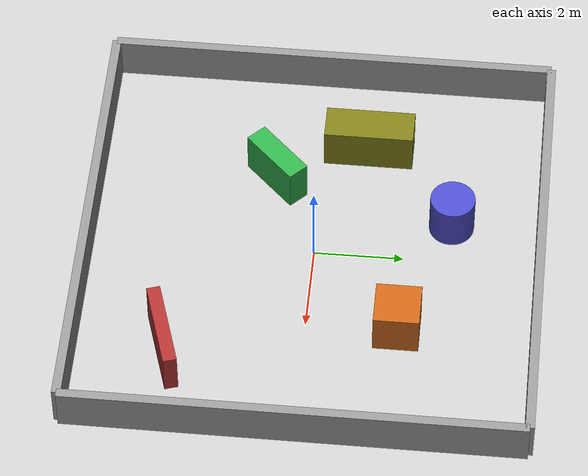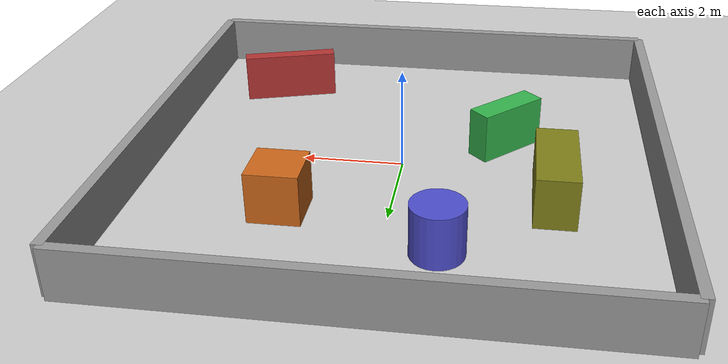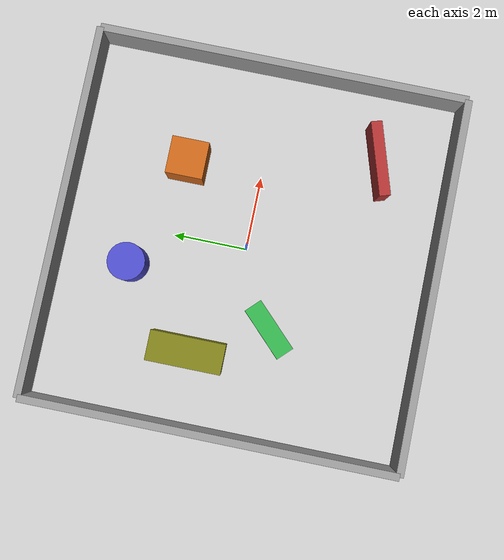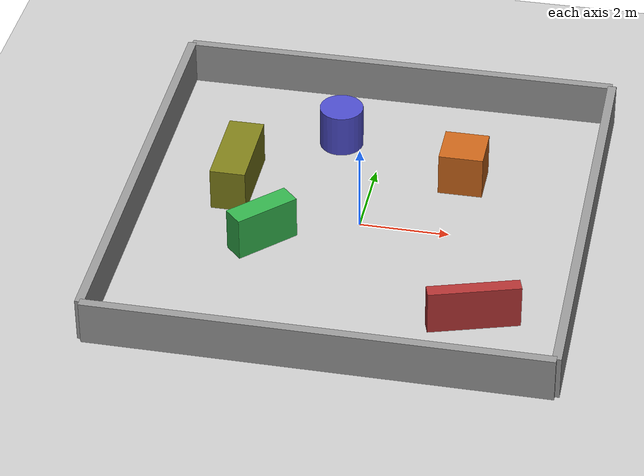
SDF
<?xml version="1.0" ?>
<sdf version="1.6">
  <world name="obstacles">
    <!-- Physics -->
    <physics type="ode">
      <real_time_update_rate>1000.0</real_time_update_rate>
    </physics>

    <!-- Lighting -->
    <include>
      <uri>model://sun</uri>
    </include>

    <!-- Ground -->
    <include>
      <uri>model://ground_plane</uri>
    </include>

    <!-- === Walls (boundary) === -->
    <model name="wall_north">
      <static>true</static>
      <pose>0 5 0.5 0 0 0</pose>
      <link name="link">
        <collision name="collision">
          <geometry><box><size>10 0.2 1</size></box></geometry>
        </collision>
        <visual name="visual">
          <geometry><box><size>10 0.2 1</size></box></geometry>
          <material><ambient>0.6 0.6 0.6 1</ambient></material>
        </visual>
      </link>
    </model>

    <model name="wall_south">
      <static>true</static>
      <pose>0 -5 0.5 0 0 0</pose>
      <link name="link">
        <collision name="collision">
          <geometry><box><size>10 0.2 1</size></box></geometry>
        </collision>
        <visual name="visual">
          <geometry><box><size>10 0.2 1</size></box></geometry>
          <material><ambient>0.6 0.6 0.6 1</ambient></material>
        </visual>
      </link>
    </model>

    <model name="wall_east">
      <static>true</static>
      <pose>5 0 0.5 0 0 1.5708</pose>
      <link name="link">
        <collision name="collision">
          <geometry><box><size>10 0.2 1</size></box></geometry>
        </collision>
        <visual name="visual">
          <geometry><box><size>10 0.2 1</size></box></geometry>
          <material><ambient>0.6 0.6 0.6 1</ambient></material>
        </visual>
      </link>
    </model>

    <model name="wall_west">
      <static>true</static>
      <pose>-5 0 0.5 0 0 1.5708</pose>
      <link name="link">
        <collision name="collision">
          <geometry><box><size>10 0.2 1</size></box></geometry>
        </collision>
        <visual name="visual">
          <geometry><box><size>10 0.2 1</size></box></geometry>
          <material><ambient>0.6 0.6 0.6 1</ambient></material>
        </visual>
      </link>
    </model>

    <!-- === Obstacles === -->
    <model name="box1">
      <static>true</static>
      <pose>2 2 0.5 0 0 0</pose>
      <link name="link">
        <collision name="collision">
          <geometry><box><size>1 1 1</size></box></geometry>
        </collision>
        <visual name="visual">
          <geometry><box><size>1 1 1</size></box></geometry>
          <material><ambient>0.8 0.4 0.1 1</ambient></material>
        </visual>
      </link>
    </model>

    <model name="box2">
      <static>true</static>
      <pose>-2 -1 0.5 0 0 0.7854</pose>
      <link name="link">
        <collision name="collision">
          <geometry><box><size>1.5 0.5 1</size></box></geometry>
        </collision>
        <visual name="visual">
          <geometry><box><size>1.5 0.5 1</size></box></geometry>
          <material><ambient>0.2 0.7 0.3 1</ambient></material>
        </visual>
      </link>
    </model>

    <model name="cylinder1">
      <static>true</static>
      <pose>-1 3 0.5 0 0 0</pose>
      <link name="link">
        <collision name="collision">
          <geometry><cylinder><radius>0.5</radius><length>1</length></cylinder></geometry>
        </collision>
        <visual name="visual">
          <geometry><cylinder><radius>0.5</radius><length>1</length></cylinder></geometry>
          <material><ambient>0.3 0.3 0.8 1</ambient></material>
        </visual>
      </link>
    </model>

    <model name="box3">
      <static>true</static>
      <pose>3 -3 0.5 0 0 0.3</pose>
      <link name="link">
        <collision name="collision">
          <geometry><box><size>2 0.3 1</size></box></geometry>
        </collision>
        <visual name="visual">
          <geometry><box><size>2 0.3 1</size></box></geometry>
          <material><ambient>0.7 0.2 0.2 1</ambient></material>
        </visual>
      </link>
    </model>

    <model name="box4">
      <static>true</static>
      <pose>-3 1 0.5 0 0 0</pose>
      <link name="link">
        <collision name="collision">
          <geometry><box><size>0.8 2 1</size></box></geometry>
        </collision>
        <visual name="visual">
          <geometry><box><size>0.8 2 1</size></box></geometry>
          <material><ambient>0.5 0.5 0.1 1</ambient></material>
        </visual>
      </link>
    </model>

  </world>
</sdf>
